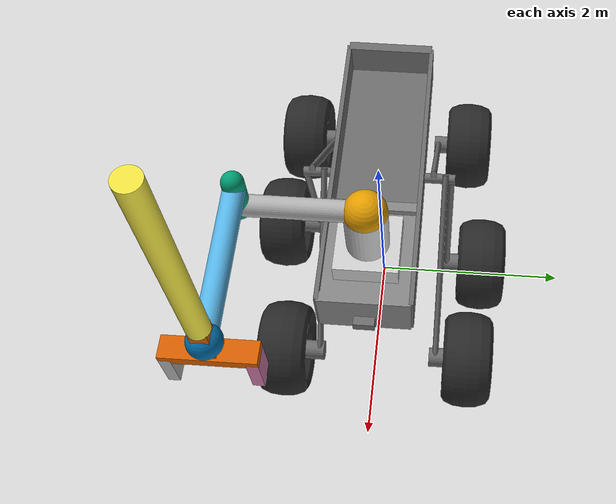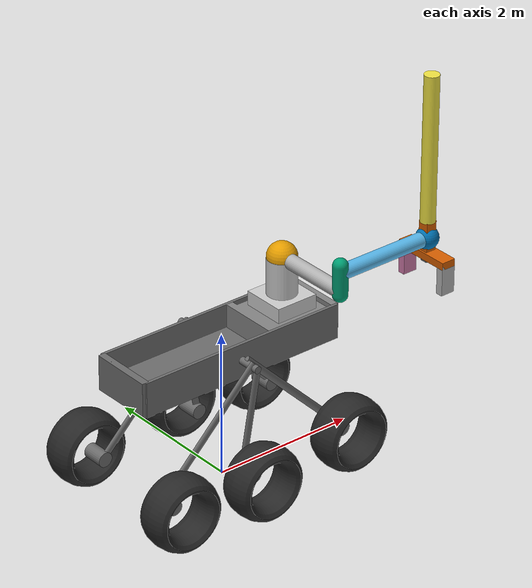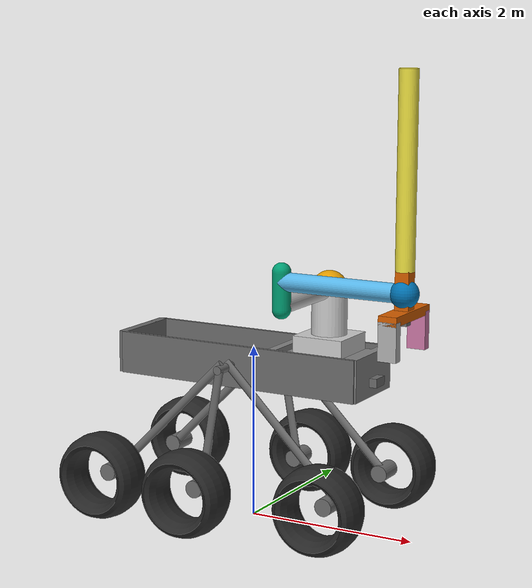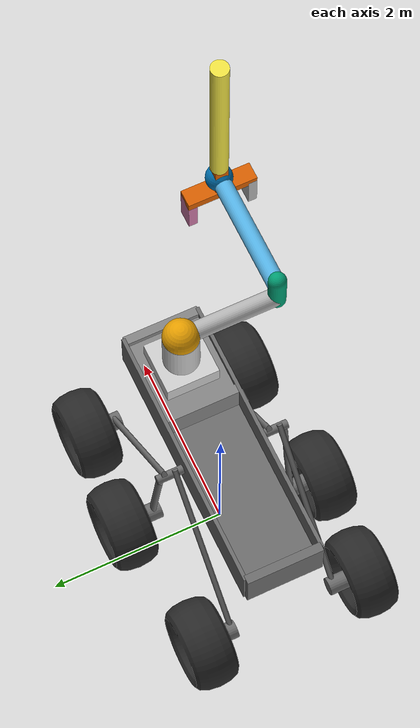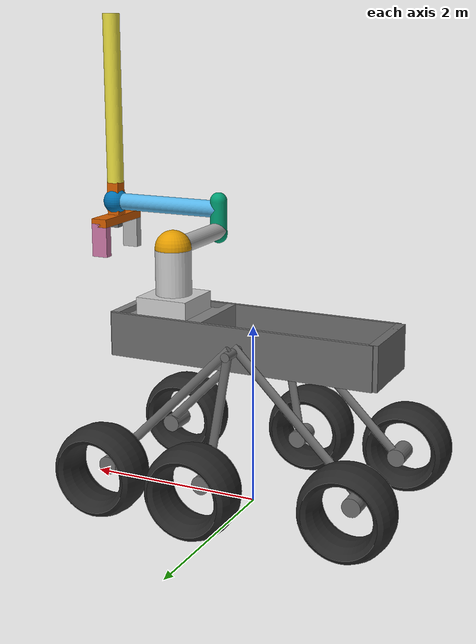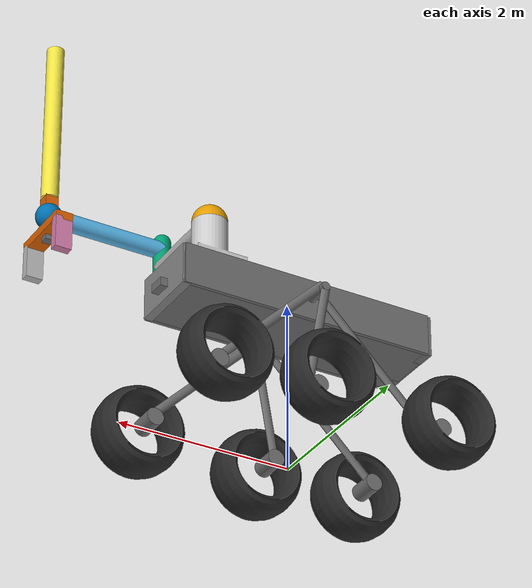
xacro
<?xml version="1.0"?>

<robot name="albor" xmlns:xacro="http://wiki.ros.org/xacro">

    <!-- includes -->
    <xacro:include filename="$(find albor_description)/urdf/base/robot_base.urdf.xacro"/>
    <xacro:include filename="$(find albor_description)/urdf/arm/gripper.urdf.xacro"/>
    <xacro:include filename="$(find albor_description)/urdf/wheels/rover_wheel.urdf.xacro"/>
    <xacro:include filename="$(find albor_description)/urdf/arm/scara.urdf.xacro"/>
    <xacro:include filename="$(find albor_description)/urdf/sensors/camera.urdf.xacro"/>
    <xacro:include filename="$(find albor_description)/urdf/sensors/imu_sensor.urdf.xacro"/>
    <xacro:include filename="$(find albor_description)/urdf/utils/utils.urdf.xacro"/>
    <xacro:include filename="$(find albor_description)/urdf/ros2_control.urdf.xacro"/>

    <xacro:arg name="prefix" default=""/>

    <xacro:utils/>

    <xacro:wheel    prefix="$(arg prefix)"
                    left_back_link="$(arg prefix)left_back_link"
                    left_front_link="$(arg prefix)left_front_link"
                    left_mid_link="$(arg prefix)left_mid_link"
                    right_back_link="$(arg prefix)right_back_link"
                    right_front_link="$(arg prefix)right_front_link"
                    right_mid_link="$(arg prefix)right_mid_link">
    </xacro:wheel>

    <xacro:scara    prefix="$(arg prefix)"
                    compartment_link="$(arg prefix)compartment_link"
                    init_pose="2.23">
    </xacro:scara>

    <xacro:gripper  prefix="$(arg prefix)"
                    third_bone_link="$(arg prefix)third_bone_link">
    </xacro:gripper>

    <xacro:robot_base prefix="$(arg prefix)"/>

    <!--Front camera-->
    <xacro:camera   prefix="$(arg prefix)"
                    name="front"
                    parent="$(arg prefix)base_link"
                    coord="1.55 0.0 0.0"
                    size="0.1 0.2 0.1"
                    rpy="0.0 0.0 0.0">
    </xacro:camera>

    <!--Camera gripper-->
    <xacro:camera   prefix="$(arg prefix)"
                    name="gripper"
                    parent="$(arg prefix)base_gripper_link"
                    coord="0.0 0.0 0.1"
                    size="0.2 0.1 0.1"
                    rpy="1.57 -1.57 0.0">
    </xacro:camera>

    <xacro:imu_sensor prefix="$(arg prefix)" parent="$(arg prefix)base_link"/>

    <!--Gazebo plugings-->
    <xacro:include filename="$(find albor_description)/urdf/ros2_control.urdf.xacro"/>
    <xacro:arg name="config_controllers" default="$(find albor_description)/config/albor_controllers.yaml"/>
    <xacro:arg name="update_rate" default="20"/>
    <xacro:ros2_control/>

</robot>

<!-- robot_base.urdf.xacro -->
<robot xmlns:xacro="http://www.ros.org/wiki/xacro">

    <xacro:macro name="robot_base" params="prefix">

        <link name="${prefix}base_link">
            <visual name="base">
                <origin rpy="0.00000 0.00000 0.00000" xyz="0.00000 0.00000 0.00000"/>
                <geometry>
                    <box size="0.01 0.01 0.01"/>
                </geometry>
            </visual>
        </link>

        <link name="${prefix}base_footprint">
            <visual name="base_footprint">
                <origin rpy="0.00000 0.00000 0.00000" xyz="0.00000 0.00000 0.00000"/>
                <geometry>
                    <box size="0.01 0.01 0.01"/>
                </geometry>
            </visual>
        </link>

        <link name="${prefix}compartment_link">
            <collision name="Compartment_collision">
                <origin rpy="0.00000 0.00000 0.00000" xyz="0.00000 0.00000 -0.00935"/>
                <geometry>
                    <mesh filename="package://albor_description/meshes/dae/Cube.009.dae" scale="0.43290 0.50000 0.01613"/>
                </geometry>
            </collision>
            <inertial>
                <inertia ixx="14.85240" ixy="0.00000" ixz="-0.00000" iyy="5.62035" iyz="1.28487" izz="18.14634"/>
                <origin rpy="0.00000 0.00000 0.00000" xyz="-0.00000 0.07143 -0.01152"/>
                <mass value="100.00000"/>
            </inertial>
            <visual name="Compartment">
                <origin rpy="0.00000 0.00000 0.00000" xyz="0.00000 0.00000 0.00000"/>
                <material name="Material.001"/>
                <geometry>
                    <mesh filename="package://albor_description/meshes/dae/Cube.009.dae" scale="0.43290 0.50000 0.01613"/>
                </geometry>
            </visual>
        </link>

        <link name="${prefix}cube_link">
            <collision name="Cube.001_collision">
                <origin rpy="0.00000 0.00000 0.00000" xyz="-0.43290 -0.00774 0.06554"/>
                <geometry>
                    <mesh filename="package://albor_description/meshes/dae/Cube.017.dae" scale="0.43290 0.30000 0.01613"/>
                </geometry>
            </collision>
            <collision name="Cube.002_collision">
                <origin rpy="0.00000 0.00000 0.00000" xyz="0.43290 -0.00774 0.06554"/>
                <geometry>
                    <mesh filename="package://albor_description/meshes/dae/Cube.018.dae" scale="0.43290 0.50000 0.01613"/>
                </geometry>
            </collision>
            <collision name="Cube.003_collision">
                <origin rpy="0.00000 0.00000 0.00000" xyz="0.00000 -1.50774 0.06554"/>
                <geometry>
                    <mesh filename="package://albor_description/meshes/dae/Cube.019.dae" scale="0.43290 0.50000 0.01613"/>
                </geometry>
            </collision>
            <collision name="Cube_collision">
                <origin rpy="0.00000 0.00000 0.00000" xyz="0.00000 -0.01774 -0.09446"/>
                <geometry>
                    <mesh filename="package://albor_description/meshes/dae/Cube.013.dae" scale="0.43290 0.50000 0.01613"/>
                </geometry>
            </collision>
            <inertial>
                <inertia ixx="369.24508" ixy="0.00000" ixz="0.00000" iyy="18.02609" iyz="0.00000" izz="386.00741"/>
                <origin rpy="0.00000 0.00000 0.00000" xyz="0.00000 -0.01267 -0.08703"/>
                <mass value="300.00000"/>
            </inertial>
            <visual name="Cube">
                <origin rpy="0.00000 0.00000 0.00000" xyz="0.00000 -0.01267 -0.08703"/>
                <material name="Material"/>
                <geometry>
                    <mesh filename="package://albor_description/meshes/dae/Cube.013.dae" scale="0.43290 0.50000 0.01613"/>
                </geometry>
            </visual>
            <visual name="Cube.001">
                <origin rpy="0.00000 0.00000 0.00000" xyz="-0.43290 -0.00755 0.07426"/>
                <material name="Material"/>
                <geometry>
                    <mesh filename="package://albor_description/meshes/dae/Cube.017.dae" scale="0.43290 0.50000 0.01613"/>
                </geometry>
            </visual>
            <visual name="Cube.002">
                <origin rpy="0.00000 0.00000 0.00000" xyz="0.43290 -0.00755 0.07426"/>
                <material name="Material"/>
                <geometry>
                    <mesh filename="package://albor_description/meshes/dae/Cube.018.dae" scale="0.43290 0.50000 0.01613"/>
                </geometry>
            </visual>
            <visual name="Cube.003">
                <origin rpy="0.00000 0.00000 0.00000" xyz="0.00000 -1.50755 0.07495"/>
                <material name="Material"/>
                <geometry>
                    <mesh filename="package://albor_description/meshes/dae/Cube.019.dae" scale="0.43290 0.50000 0.01613"/>
                </geometry>
            </visual>
        </link>

        <!-- left part-->
        <link name="${prefix}left_axis_link">
            <collision name="left_axis_collision">
                <origin rpy="0.00000 0.00000 0.00000" xyz="0.00000 0.00000 -0.00000"/>
                <geometry>
                    <mesh filename="package://albor_description/meshes/dae/Cube.005.dae" scale="0.43290 0.50000 0.01613"/>
                </geometry>
            </collision>
            <inertial>
                <inertia ixx="0.01242" ixy="0.00000" ixz="0.00000" iyy="0.08273" iyz="-0.00000" izz="0.08273"/>
                <origin rpy="0.00000 0.00000 0.00000" xyz="0.00000 0.00000 -0.00000"/>
                <mass value="10.00000"/>
            </inertial>
            <visual name="left_axis">
                <origin rpy="0.00000 0.00000 0.00000" xyz="0.00000 0.00000 -0.00000"/>
                <material name="Material.002"/>
                <geometry>
                    <mesh filename="package://albor_description/meshes/dae/Cube.005.dae" scale="0.43290 0.50000 0.01613"/>
                </geometry>
            </visual>
        </link>

            <link name="${prefix}left_back_axis_link">
                <collision name="left_back_axis_collision">
                    <origin rpy="0.00000 0.00000 0.00000" xyz="-0.00545 0.00000 0.00000"/>
                    <geometry>
                        <mesh filename="package://albor_description/meshes/dae/Cube.008.dae" scale="0.43290 0.50000 0.01613"/>
                    </geometry>
                </collision>
                <inertial>
                    <inertia ixx="10.40604" ixy="0.00000" ixz="-0.00000" iyy="5.00821" iyz="5.19698" izz="5.40653"/>
                    <origin rpy="0.00000 0.00000 0.00000" xyz="0.00000 0.00000 0.00000"/>
                    <mass value="20.00000"/>
                </inertial>
                <visual name="left_back_axis">
                    <origin rpy="0.00000 0.00000 0.00000" xyz="0.00000 0.00000 0.00000"/>
                    <material name="Material.004"/>
                    <geometry>
                        <mesh filename="package://albor_description/meshes/dae/Cube.008.dae" scale="0.43290 0.50000 0.01613"/>
                    </geometry>
                </visual>
            </link>
                <link name="${prefix}left_back_link">
                    <collision name="left_back_collision">
                        <origin rpy="0.00000 0.00000 0.00000" xyz="-0.00000 0.00000 0.00000"/>
                        <geometry>
                            <mesh filename="package://albor_description/meshes/dae/Cylinder.004.dae" scale="0.10000 0.10000 0.15000"/>
                        </geometry>
                    </collision>
                    <inertial>
                        <inertia ixx="0.05000" ixy="0.00000" ixz="0.00000" iyy="0.10000" iyz="0.00000" izz="0.10000"/>
                        <origin rpy="0.00000 0.00000 0.00000" xyz="-0.00000 0.00000 0.00000"/>
                        <mass value="10.00000"/>
                    </inertial>
                    <visual name="left_back">
                        <origin rpy="0.00000 0.00000 0.00000" xyz="-0.00000 0.00000 0.00000"/>
                        <material name="Material.003"/>
                        <geometry>
                            <cylinder radius="0.10000" length="0.30000"/>
                        </geometry>
                    </visual>
                </link>

            <link name="${prefix}left_front_axis_link">
                <collision name="left_front_axis_collision">
                    <origin rpy="0.00000 0.00000 0.00000" xyz="-0.00007 0.00000 0.00000"/>
                    <geometry>
                        <mesh filename="package://albor_description/meshes/dae/Cube.007.dae" scale="0.43290 0.50000 0.01613"/>
                    </geometry>
                </collision>
                <inertial>
                    <inertia ixx="10.40604" ixy="-0.00000" ixz="-0.00000" iyy="5.00821" iyz="-5.19698" izz="5.40653"/>
                    <origin rpy="0.00000 0.00000 0.00000" xyz="-0.00000 0.00000 0.00000"/>
                    <mass value="20.00000"/>
                </inertial>
                <visual name="left_front_axis">
                    <origin rpy="0.00000 0.00000 0.00000" xyz="0.00000 0.00000 0.00000"/>
                    <material name="Material.006"/>
                    <geometry>
                        <mesh filename="package://albor_description/meshes/dae/Cube.007.dae" scale="0.43290 0.50000 0.01613"/>
                    </geometry>
                </visual>
            </link>
                <link name="${prefix}left_front_link">
                    <collision name="left_front_collision">
                        <origin rpy="0.00000 0.00000 0.00000" xyz="0.00000 0.00000 0.00000"/>
                        <geometry>
                            <mesh filename="package://albor_description/meshes/dae/Cylinder.001.dae" scale="0.10000 0.10000 0.15000"/>
                        </geometry>
                    </collision>
                    <inertial>
                        <inertia ixx="0.05000" ixy="0.00000" ixz="0.00000" iyy="0.10000" iyz="0.00000" izz="0.10000"/>
                        <origin rpy="0.00000 0.00000 0.00000" xyz="-0.00000 0.00000 0.00000"/>
                        <mass value="10.00000"/>
                    </inertial>
                    <visual name="left_front">
                        <origin rpy="0.00000 0.00000 0.00000" xyz="0.00000 0.00000 0.00000"/>
                        <material name="Material.005"/>
                        <geometry>
                            <cylinder radius="0.10000" length="0.30000"/>
                        </geometry>
                    </visual>
                </link>

            <link name="${prefix}left_mid_axis_link">
                <collision name="left_mid_axis_collision">
                    <origin rpy="0.00000 0.00000 0.00000" xyz="-0.00727 0.00000 0.00000"/>
                    <geometry>
                        <mesh filename="package://albor_description/meshes/dae/Cube.006.dae" scale="0.43290 0.50000 0.01613"/>
                    </geometry>
                </collision>
                <inertial>
                    <inertia ixx="2.82909" ixy="-0.00000" ixz="-0.00000" iyy="2.73667" iyz="-0.47955" izz="0.10154"/>
                    <origin rpy="0.00000 0.00000 0.00000" xyz="0.00000 0.00000 0.00000"/>
                    <mass value="20.00000"/>
                </inertial>
                <visual name="left_mid_axis">
                    <origin rpy="0.00000 0.00000 0.00000" xyz="0.00000 0.00000 0.00000"/>
                    <material name="Material.008"/>
                    <geometry>
                        <mesh filename="package://albor_description/meshes/dae/Cube.006.dae" scale="0.43290 0.50000 0.01613"/>
                    </geometry>
                </visual>
            </link>
                <link name="${prefix}left_mid_link">
                    <collision name="left_mid_collision">
                        <origin rpy="0.00000 0.00000 0.00000" xyz="0.00000 0.00000 0.00000"/>
                        <geometry>
                            <mesh filename="package://albor_description/meshes/dae/Cylinder.002.dae" scale="0.10000 0.10000 0.15000"/>
                        </geometry>
                    </collision>
                    <inertial>
                        <inertia ixx="0.05000" ixy="0.00000" ixz="0.00000" iyy="0.10000" iyz="0.00000" izz="0.10000"/>
                        <origin rpy="0.00000 0.00000 0.00000" xyz="-0.00000 0.00000 0.00000"/>
                        <mass value="10.00000"/>
                    </inertial>
                    <visual name="left_mid">
                        <origin rpy="0.00000 0.00000 0.00000" xyz="-0.00000 0.00000 0.00000"/>
                        <material name="Material.007"/>
                        <geometry>
                            <cylinder radius="0.10000" length="0.30000"/>
                        </geometry>
                    </visual>
                </link>

        <!-- right part -->
        <link name="${prefix}right_axis_link">
            <collision name="right_axis_collision">
                <origin rpy="0.00000 0.00000 0.00000" xyz="0.00606 0.00000 -0.00000"/>
                <geometry>
                    <mesh filename="package://albor_description/meshes/dae/Cube.001.dae" scale="0.43290 0.50000 0.01613"/>
                </geometry>
            </collision>
            <inertial>
                <inertia ixx="0.01242" ixy="-0.00000" ixz="-0.00000" iyy="0.08273" iyz="0.00000" izz="0.08273"/>
                <origin rpy="0.00000 0.00000 0.00000" xyz="0.00000 0.00000 -0.00000"/>
                <mass value="10.00000"/>
            </inertial>
            <visual name="right_axis">
                <origin rpy="0.00000 0.00000 0.00000" xyz="0.00000 0.00000 -0.00000"/>
                <material name="Material.009"/>
                <geometry>
                    <mesh filename="package://albor_description/meshes/dae/Cube.001.dae" scale="0.43290 0.50000 0.01613"/>
                </geometry>
            </visual>
        </link>
            <link name="${prefix}right_back_axis_link">
                <collision name="right_back_axis_collision">
                    <origin rpy="0.00000 0.00000 0.00000" xyz="0.00667 0.00000 0.00000"/>
                    <geometry>
                        <mesh filename="package://albor_description/meshes/dae/Cube.004.dae" scale="0.43290 0.50000 0.01613"/>
                    </geometry>
                </collision>
                <inertial>
                    <inertia ixx="10.40604" ixy="0.00000" ixz="-0.00000" iyy="5.00821" iyz="5.19698" izz="5.40653"/>
                    <origin rpy="0.00000 0.00000 0.00000" xyz="-0.00000 0.00000 0.00000"/>
                    <mass value="20.00000"/>
                </inertial>
                <visual name="right_back_axis">
                    <origin rpy="0.00000 0.00000 0.00000" xyz="0.00000 0.00000 0.00000"/>
                    <material name="Material.011"/>
                    <geometry>
                        <mesh filename="package://albor_description/meshes/dae/Cube.004.dae" scale="0.43290 0.50000 0.01613"/>
                    </geometry>
                </visual>
            </link>
                <link name="${prefix}right_back_link">
                    <collision name="right_back_collision">
                        <origin rpy="0.00000 0.00000 0.00000" xyz="0.00000 0.00000 0.00000"/>
                        <geometry>
                            <mesh filename="package://albor_description/meshes/dae/Cylinder.005.dae" scale="0.10000 0.10000 0.15000"/>
                        </geometry>
                    </collision>
                    <inertial>
                        <inertia ixx="0.05000" ixy="0.00000" ixz="0.00000" iyy="0.10000" iyz="0.00000" izz="0.10000"/>
                        <origin rpy="0.00000 0.00000 0.00000" xyz="0.00000 0.00000 0.00000"/>
                        <mass value="10.00000"/>
                    </inertial>
                        <visual name="right_back">
                        <origin rpy="0.00000 0.00000 0.00000" xyz="0.00000 0.00000 -0.00000"/>
                        <material name="Material.010"/>
                        <geometry>
                            <cylinder radius="0.10000" length="0.30000"/>
                        </geometry>
                    </visual>
                </link>

            <link name="${prefix}right_front_axis_link">
                <collision name="right_front_axis_collision">
                    <origin rpy="0.00000 0.00000 0.00000" xyz="0.00545 0.00000 0.00000"/>
                    <geometry>
                        <mesh filename="package://albor_description/meshes/dae/Cube.002.dae" scale="0.43290 0.50000 0.01613"/>
                    </geometry>
                </collision>
                <inertial>
                    <inertia ixx="10.40604" ixy="0.00000" ixz="0.00000" iyy="5.00821" iyz="-5.19698" izz="5.40653"/>
                    <origin rpy="0.00000 0.00000 0.00000" xyz="-0.00000 -0.00000 0.00000"/>
                    <mass value="20.00000"/>
                </inertial>
                <visual name="right_front_axis">
                    <origin rpy="0.00000 0.00000 0.00000" xyz="0.00000 -0.00000 0.00000"/>
                    <material name="Material.013"/>
                    <geometry>
                        <mesh filename="package://albor_description/meshes/dae/Cube.002.dae" scale="0.43290 0.50000 0.01613"/>
                    </geometry>
                </visual>
            </link>
                <link name="${prefix}right_front_link">
                    <collision name="right_front_collision">
                        <origin rpy="0.00000 0.00000 0.00000" xyz="0.00000 0.00000 0.00000"/>
                        <geometry>
                            <mesh filename="package://albor_description/meshes/dae/Cylinder.dae" scale="0.10000 0.10000 0.15000"/>
                        </geometry>
                        </collision>
                    <inertial>
                        <inertia ixx="0.05000" ixy="0.00000" ixz="0.00000" iyy="0.10000" iyz="0.00000" izz="0.10000"/>
                        <origin rpy="0.00000 0.00000 0.00000" xyz="-0.00000 0.00000 0.00000"/>
                        <mass value="10.00000"/>
                    </inertial>
                    <visual name="right_front">
                        <origin rpy="0.00000 0.00000 0.00000" xyz="-0.00000 0.00000 0.00000"/>
                        <material name="Material.012"/>
                        <geometry>
                            <cylinder radius="0.10000" length="0.30000"/>
                        </geometry>
                    </visual>
                </link>

            <link name="${prefix}right_mid_axis_link">
                <collision name="right_mid_axis_collision">
                    <origin rpy="0.00000 0.00000 0.00000" xyz="0.00727 0.00000 0.00000"/>
                    <geometry>
                        <mesh filename="package://albor_description/meshes/dae/Cube.003.dae" scale="0.43290 0.50000 0.01613"/>
                    </geometry>
                </collision>
                <inertial>
                    <inertia ixx="2.82909" ixy="0.00000" ixz="-0.00000" iyy="2.73667" iyz="0.47955" izz="0.10154"/>
                    <origin rpy="0.00000 0.00000 0.00000" xyz="0.00000 0.00000 0.00000"/>
                    <mass value="20.00000"/>
                </inertial>
                <visual name="right_mid_axis">
                    <origin rpy="0.00000 0.00000 0.00000" xyz="0.00000 0.00000 0.00000"/>
                    <material name="Material.015"/>
                    <geometry>
                        <mesh filename="package://albor_description/meshes/dae/Cube.003.dae" scale="0.43290 0.50000 0.01613"/>
                    </geometry>
                </visual>
            </link>
                <link name="${prefix}right_mid_link">
                    <collision name="right_mid_collision">
                        <origin rpy="0.00000 0.00000 0.00000" xyz="0.00000 0.00000 0.00000"/>
                        <geometry>
                            <mesh filename="package://albor_description/meshes/dae/Cylinder.003.dae" scale="0.10000 0.10000 0.15000"/>
                        </geometry>
                    </collision>
                        <inertial>
                        <inertia ixx="0.05000" ixy="0.00000" ixz="0.00000" iyy="0.10000" iyz="0.00000" izz="0.10000"/>
                        <origin rpy="0.00000 0.00000 0.00000" xyz="-0.00000 0.00000 0.00000"/>
                        <mass value="10.00000"/>
                    </inertial>
                        <visual name="right_mid">
                        <origin rpy="0.00000 0.00000 0.00000" xyz="0.00000 0.00000 0.00000"/>
                        <material name="Material.014"/>
                        <geometry>
                            <cylinder radius="0.10000" length="0.30000"/>
                        </geometry>
                    </visual>
                </link>

        <joint name="${prefix}base_footprint_joint" type="fixed">
            <origin rpy="0.00000 0.00000 0.00000" xyz="0.00000 0.0000 1.7800"/>
            <parent link="${prefix}base_footprint"/>
            <child link="${prefix}base_link"/>
        </joint>

        <joint name="${prefix}base_link_joint" type="fixed">
            <origin rpy="0.00000 0.00000 -1.57000" xyz="0.00000 0.0000 0.0000"/>
            <parent link="${prefix}base_link"/>
            <child link="${prefix}cube_link"/>
        </joint>

        <joint name="${prefix}compartment_joint" type="fixed">
            <origin rpy="0.00000 0.00000 0.00000" xyz="0.00000 0.96226 0.15490"/>
            <parent link="${prefix}cube_link"/>
            <child link="${prefix}compartment_link"/>
        </joint>

        <joint name="${prefix}left_axis_joint" type="fixed">
            <origin rpy="0.00000 0.00000 0.00000" xyz="0.60606 -0.03774 0.08554"/>
            <parent link="${prefix}cube_link"/>
            <child link="${prefix}left_axis_link"/>
        </joint>

        <joint name="${prefix}left_back_axis_joint" type="fixed">
            <origin rpy="0.00000 0.00000 0.00000" xyz="-0.06061 0.70000 -0.65000"/>
            <parent link="${prefix}left_axis_link"/>
            <child link="${prefix}left_back_axis_link"/>
        </joint>

        <joint name="${prefix}left_back_joint" type="fixed">
            <origin rpy="0.00000 1.57080 0.00000" xyz="0.10455 0.65000 -0.70000"/>
            <parent link="${prefix}left_back_axis_link"/>
            <child link="${prefix}left_back_link"/>
        </joint>

        <joint name="${prefix}left_front_axis_joint" type="fixed">
            <origin rpy="0.00000 0.00000 0.00000" xyz="0.06061 -0.70000 -0.65000"/>
            <parent link="${prefix}left_axis_link"/>
            <child link="${prefix}left_front_axis_link"/>
        </joint>

        <joint name="${prefix}left_front_joint" type="fixed">
            <origin rpy="0.00000 1.57080 0.00000" xyz="0.08333 -0.70000 -0.70000"/>
            <parent link="${prefix}left_front_axis_link"/>
            <child link="${prefix}left_front_link"/>
        </joint>

        <joint name="${prefix}left_mid_axis_joint" type="fixed">
            <origin rpy="0.00000 0.00000 0.00000" xyz="0.12121 -0.10000 -0.65000"/>
            <parent link="${prefix}left_axis_link"/>
            <child link="${prefix}left_mid_axis_link"/>
        </joint>

        <joint name="${prefix}left_mid_joint" type="fixed">
            <origin rpy="0.00000 1.57080 0.00000" xyz="0.07273 -0.10000 -0.70000"/>
            <parent link="${prefix}left_mid_axis_link"/>
            <child link="${prefix}left_mid_link"/>
        </joint>

        <joint name="${prefix}right_axis_joint" type="fixed">
            <origin rpy="0.00000 0.00000 0.00000" xyz="-0.60606 -0.03774 0.08554"/>
            <parent link="${prefix}cube_link"/>
            <child link="${prefix}right_axis_link"/>
        </joint>

        <joint name="${prefix}right_back_axis_joint" type="fixed">
            <origin rpy="0.00000 0.00000 0.00000" xyz="-0.06061 0.70000 -0.65000"/>
            <parent link="${prefix}right_axis_link"/>
            <child link="${prefix}right_back_axis_link"/>
        </joint>

        <joint name="${prefix}right_back_joint" type="fixed">
            <origin rpy="0.00000 1.57080 0.00000" xyz="-0.08333 0.65000 -0.70000"/>
            <parent link="${prefix}right_back_axis_link"/>
            <child link="${prefix}right_back_link"/>
        </joint>

        <joint name="${prefix}right_front_axis_joint" type="fixed">
            <origin rpy="0.00000 0.00000 0.00000" xyz="0.06061 -0.70000 -0.65000"/>
            <parent link="${prefix}right_axis_link"/>
            <child link="${prefix}right_front_axis_link"/>
        </joint>

        <joint name="${prefix}right_front_joint" type="fixed">
            <origin rpy="0.00000 1.57080 0.00000" xyz="-0.10455 -0.70000 -0.70000"/>
            <parent link="${prefix}right_front_axis_link"/>
            <child link="${prefix}right_front_link"/>
        </joint>

        <joint name="${prefix}right_mid_axis_joint" type="fixed">
            <origin rpy="0.00000 0.00000 0.00000" xyz="-0.12121 0.10000 -0.65000"/>
            <parent link="${prefix}right_axis_link"/>
            <child link="${prefix}right_mid_axis_link"/>
        </joint>

        <joint name="${prefix}right_mid_joint" type="fixed">
            <origin rpy="0.00000 1.57080 0.00000" xyz="-0.07273 0.10000 -0.70000"/>
            <parent link="${prefix}right_mid_axis_link"/>
            <child link="${prefix}right_mid_link"/>
        </joint>
    </xacro:macro>
</robot>

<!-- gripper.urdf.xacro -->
<robot xmlns:xacro="http://www.ros.org/wiki/xacro">

    <xacro:macro name="gripper" params="third_bone_link prefix">

        <link name="${prefix}base_gripper_link">
            <collision name="base_gripper_collision">
                <origin rpy="-0.00000 0.00000 0.00000" xyz="0.00000 -0.00000 -0.00000"/>
                <geometry>
                    <mesh filename="package://albor_description/meshes/dae/Cube.012.dae" scale="0.07500 0.07500 0.20000"/>
                </geometry>
            </collision>
            <inertial>
                <inertia ixx="0.05792" ixy="-0.00000" ixz="0.00000" iyy="0.15247" iyz="0.00000" izz="0.11022"/>
                <origin rpy="0.00000 0.00000 0.00000" xyz="0.00000 0.00000 -0.00000"/>
                <mass value="1.00000"/>
            </inertial>
                <visual name="base_gripper">
                <origin rpy="0.00000 0.00000 0.00000" xyz="0.00000 0.00000 0.00000"/>
                <geometry>
                    <mesh filename="package://albor_description/meshes/dae/Cube.012.dae" scale="0.07500 0.07500 0.20000"/>
                </geometry>
            </visual>
        </link>

        <link name="${prefix}gripper_1_link">
            <collision name="gripper_1_collision">
                <origin rpy="0.00000 0.00000 0.00000" xyz="0.00000 0.00000 0.00000"/>
                <geometry>
                    <mesh filename="package://albor_description/meshes/dae/Cube.011.dae" scale="0.05000 0.10000 0.20000"/>
                </geometry>
            </collision>
            <inertial>
                <inertia ixx="0.01667" ixy="0.00000" ixz="0.00000" iyy="0.01417" iyz="0.00000" izz="0.00417"/>
                <origin rpy="0.00000 0.00000 0.00000" xyz="0.00000 0.00000 0.00000"/>
                <mass value="0.50000"/>
            </inertial>
            <visual name="gripper_1">
                <origin rpy="0.00000 0.00000 0.00000" xyz="0.00000 0.00000 0.00000"/>
                <geometry>
                    <mesh filename="package://albor_description/meshes/dae/Cube.011.dae" scale="0.05000 0.10000 0.20000"/>
                </geometry>
            </visual>
        </link>

        <link name="${prefix}gripper_2_link">
            <collision name="gripper_2_collision">
                <origin rpy="0.00000 0.00000 0.00000" xyz="-0.00000 0.00000 0.00000"/>
                <geometry>
                    <mesh filename="package://albor_description/meshes/dae/Cube.010.dae" scale="0.05000 0.10000 0.20000"/>
                </geometry>
            </collision>
            <inertial>
                <inertia ixx="0.01667" ixy="0.00000" ixz="0.00000" iyy="0.01417" iyz="0.00000" izz="0.00417"/>
                <origin rpy="0.00000 0.00000 0.00000" xyz="-0.00000 0.00000 0.00000"/>
                <mass value="0.50000"/>
            </inertial>
            <visual name="gripper_2">
                <origin rpy="0.00000 0.00000 0.00000" xyz="-0.00000 0.00000 0.00000"/>
                <geometry>
                    <mesh filename="package://albor_description/meshes/dae/Cube.010.dae" scale="0.05000 0.10000 0.20000"/>
                </geometry>
            </visual>
        </link>

        <joint name="${prefix}gripper_1_joint" type="prismatic">
            <limit lower="0.00000" upper="0.07000" effort="5000.00000" velocity="10.00000"/>
            <origin rpy="3.14159 0.00000 0.00000" xyz="-0.35000 0.00000 0.30000"/>
            <parent link="${prefix}base_gripper_link"/>
            <child link="${prefix}gripper_1_link"/>
            <axis xyz="1.00000 0.00000 0.00000"/>
        </joint>

        <joint name="${prefix}gripper_2_joint" type="prismatic">
            <limit lower="-0.07000" upper="0.00000" effort="5000.00000" velocity="10.00000"/>
            <origin rpy="3.14159 0.00000 0.00000" xyz="0.35000 0.00000 0.30000"/>
            <parent link="${prefix}base_gripper_link"/>
            <child link="${prefix}gripper_2_link"/>
            <axis xyz="1.00000 0.00000 0.00000"/>
        </joint>

        <joint name="${prefix}base_gripper_joint" type="revolute">
            <limit lower="-3.14000" upper="3.14000" effort="100.00000" velocity="10.00000"/>
            <origin rpy="-3.14159 0.00000 0.00000" xyz="0.00000 0.00000 -2.35000"/>
            <parent link= "${third_bone_link}"/>
            <child link="${prefix}base_gripper_link"/>
            <axis xyz="0.00000 0.00000 1.00000"/>
        </joint>

    </xacro:macro>
</robot>

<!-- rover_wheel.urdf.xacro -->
<robot xmlns:xacro="http://www.ros.org/wiki/xacro">

    <xacro:macro name="wheel" params="prefix left_back_link left_front_link left_mid_link right_back_link right_front_link right_mid_link">

        <link name="${prefix}left_back_wheel_link">
            <collision name="left_back_wheel_collision">
                <origin rpy="0.00000 0.00000 0.00000" xyz="-0.00000 0.00000 0.00000"/>
                <geometry>
                    <mesh filename="package://albor_description/meshes/dae/Torus.010.dae" scale="0.40000 0.40000 1.00000"/>
                </geometry>
                <surface>
                    <friction>
                        <ode>
                            <mu>5.000000</mu>
                            <mu2>5.00000</mu2>
                            <fdir1>0.00000 0.000000 1.000000</fdir1>
                            <slip1>0.500000</slip1>
                            <slip2>0.500000</slip2>
                        </ode>
                    </friction>
                </surface>
            </collision>
            <inertial>
                <inertia ixx="1.17295" ixy="0.00000" ixz="-0.00000" iyy="0.70953" iyz="-0.00000" izz="0.70953"/>
                <origin rpy="0.00000 0.00000 0.00000" xyz="-0.00000 0.00000 0.00000"/>
                <mass value="10.00000"/>
            </inertial>
            <visual name="left_back_wheel">
                <origin rpy="0.00000 0.00000 0.00000" xyz="-0.00000 0.00000 0.00000"/>
                <material name="Material.016"/>
                <geometry>
                    <mesh filename="package://albor_description/meshes/dae/Torus.010.dae" scale="0.40000 0.40000 1.00000"/>
                </geometry>
            </visual>
        </link>

        <link name="${prefix}left_front_wheel_link">
            <collision name="left_front_wheel_collision">
                <origin rpy="0.00000 0.00000 0.00000" xyz="0.00000 0.00000 0.00000"/>
                <geometry>
                <mesh filename="package://albor_description/meshes/dae/Torus.004.dae" scale="0.40000 0.40000 1.00000"/>
                </geometry>
                <surface>
                    <friction>
                        <ode>
                            <mu>5.000000</mu>
                            <mu2>5.00000</mu2>
                            <fdir1>0.00000 0.000000 1.000000</fdir1>
                            <slip1>0.500000</slip1>
                            <slip2>0.500000</slip2>
                        </ode>
                    </friction>
                </surface>
            </collision>
            <inertial>
                <inertia ixx="1.17295" ixy="0.00000" ixz="-0.00000" iyy="0.70953" iyz="-0.00000" izz="0.70953"/>
                <origin rpy="0.00000 0.00000 0.00000" xyz="-0.00000 -0.00000 0.00000"/>
                <mass value="10.00000"/>
            </inertial>
            <visual name="left_front_wheel">
                <origin rpy="0.00000 -0.00000 0.00000" xyz="0.00000 0.00000 0.00000"/>
                <material name="Material.017"/>
                <geometry>
                <mesh filename="package://albor_description/meshes/dae/Torus.004.dae" scale="0.40000 0.40000 1.00000"/>
                </geometry>
            </visual>
        </link>

        <link name="${prefix}left_mid_wheel_link">
            <collision name="left_mid_wheel_collision">
                <origin rpy="0.00000 0.00000 0.00000" xyz="0.00000 0.00000 0.00000"/>
                <geometry>
                <mesh filename="package://albor_description/meshes/dae/Torus.008.dae" scale="0.40000 0.40000 1.00000"/>
                </geometry>
                <surface>
                    <friction>
                        <ode>
                            <mu>5.000000</mu>
                            <mu2>5.00000</mu2>
                            <fdir1>0.00000 0.000000 1.000000</fdir1>
                            <slip1>0.500000</slip1>
                            <slip2>0.500000</slip2>
                        </ode>
                    </friction>
                </surface>
            </collision>
            <inertial>
                <inertia ixx="1.17295" ixy="0.00000" ixz="-0.00000" iyy="0.70953" iyz="-0.00000" izz="0.70953"/>
                <origin rpy="0.00000 0.00000 0.00000" xyz="0.00000 0.00000 0.00000"/>
                <mass value="10.00000"/>
            </inertial>
            <visual name="left_mid_wheel">
                <origin rpy="0.00000 -0.00000 0.00000" xyz="0.00000 0.00000 0.00000"/>
                <material name="Material.018"/>
                <geometry>
                <mesh filename="package://albor_description/meshes/dae/Torus.008.dae" scale="0.40000 0.40000 1.00000"/>
                </geometry>
            </visual>
        </link>

        <link name="${prefix}right_back_wheel_link">
            <collision name="right_back_wheel_collision">
                <origin rpy="0.00000 0.00000 0.00000" xyz="-0.00000 0.00000 -0.00000"/>
                <geometry>
                <mesh filename="package://albor_description/meshes/dae/Torus.011.dae" scale="0.40000 0.40000 1.00000"/>
                </geometry>
                <surface>
                    <friction>
                        <ode>
                            <mu>5.000000</mu>
                            <mu2>5.00000</mu2>
                            <fdir1>0.00000 0.000000 1.000000</fdir1>
                            <slip1>0.500000</slip1>
                            <slip2>0.500000</slip2>
                        </ode>
                    </friction>
                </surface>
            </collision>
            <inertial>
                <inertia ixx="1.17295" ixy="0.00000" ixz="-0.00000" iyy="0.70953" iyz="-0.00000" izz="0.70953"/>
                <origin rpy="0.00000 0.00000 0.00000" xyz="0.00000 0.00000 0.00000"/>
                <mass value="10.00000"/>
            </inertial>
            <visual name="right_back_wheel">
                <origin rpy="0.00000 0.00000 0.00000" xyz="0.00000 0.00000 0.00000"/>
                <material name="Material.019"/>
                <geometry>
                <mesh filename="package://albor_description/meshes/dae/Torus.011.dae" scale="0.40000 0.40000 1.00000"/>
                </geometry>
            </visual>
        </link>

        <link name="${prefix}right_front_wheel_link">
            <collision name="right_front_wheel_collision">
                <origin rpy="0.00000 0.00000 0.00000" xyz="-0.00000 0.00000 -0.00000"/>
                <geometry>
                <mesh filename="package://albor_description/meshes/dae/Torus.dae" scale="0.40000 0.40000 1.00000"/>
                </geometry>
                <surface>
                    <friction>
                        <ode>
                            <mu>5.000000</mu>
                            <mu2>5.00000</mu2>
                            <fdir1>0.00000 0.000000 1.000000</fdir1>
                            <slip1>0.500000</slip1>
                            <slip2>0.500000</slip2>
                        </ode>
                    </friction>
                </surface>
            </collision>
            <inertial>
                <inertia ixx="1.17295" ixy="0.00000" ixz="-0.00000" iyy="0.70953" iyz="-0.00000" izz="0.70953"/>
                <origin rpy="0.00000 0.00000 0.00000" xyz="0.00000 -0.00000 0.00000"/>
                <mass value="10.00000"/>
            </inertial>
            <visual name="right_front_wheel">
                <origin rpy="0.00000 -0.00000 0.00000" xyz="0.00000 0.00000 0.00000"/>
                <material name="Material.020"/>
                <geometry>
                <mesh filename="package://albor_description/meshes/dae/Torus.dae" scale="0.40000 0.40000 1.00000"/>
                </geometry>
            </visual>
        </link>

        <link name="${prefix}right_mid_wheel_link">
            <collision name="right_mid_wheel_collision">
                <origin rpy="0.00000 0.00000 0.00000" xyz="0.00000 0.00000 0.00000"/>
                <geometry>
                <mesh filename="package://albor_description/meshes/dae/Torus.009.dae" scale="0.40000 0.40000 1.00000"/>
                </geometry>
                <surface>
                    <friction>
                        <ode>
                            <mu>5.000000</mu>
                            <mu2>5.00000</mu2>
                            <fdir1>0.00000 0.000000 1.000000</fdir1>
                            <slip1>0.500000</slip1>
                            <slip2>0.500000</slip2>
                        </ode>
                    </friction>
                </surface>
            </collision>
            <inertial>
                <inertia ixx="1.17295" ixy="0.00000" ixz="-0.00000" iyy="0.70953" iyz="-0.00000" izz="0.70953"/>
                <origin rpy="0.00000 0.00000 0.00000" xyz="-0.00000 0.00000 0.00000"/>
                <mass value="10.00000"/>
            </inertial>
            <visual name="right_mid_wheel">
                <origin rpy="0.00000 0.00000 0.00000" xyz="-0.00000 0.00000 0.00000"/>
                <material name="Material.021"/>
                <geometry>
                <mesh filename="package://albor_description/meshes/dae/Torus.009.dae" scale="0.40000 0.40000 1.00000"/>
                </geometry>
            </visual>
        </link>

        <joint name="${prefix}left_back_wheel_joint" type="continuous">
            <limit lower="0" upper="0" effort="500.00000" velocity="10.00000"/>
            <origin rpy="0.00000 3.14000 0.00000" xyz="0.00000 0.00000 0.25000"/>
            <parent link="${left_back_link}"/>
            <child link="${prefix}left_back_wheel_link"/>
            <axis xyz="0.00000 0.00000 1.00000"/>
        </joint>

        <transmission name="${prefix}left_back_wheel_joint_trans">
            <type>transmission_interface/SimpleTransmission</type>
            <joint name="${prefix}left_back_wheel_joint">
                <hardwareInterface>hardware_interface/VelocityJointInterface</hardwareInterface>
            </joint>
            <actuator name="${prefix}left_back_wheel_joint_motor">
                <mechanicalReduction>1.0</mechanicalReduction>
            </actuator>
        </transmission>

        <joint name="${prefix}left_front_wheel_joint" type="continuous">
            <limit lower="0" upper="0" effort="500.00000" velocity="10.00000"/>
            <origin rpy="0.00000 3.14000 0.00000" xyz="0.00000 0.00000 0.25000"/>
            <parent link="${left_front_link}"/>
            <child link="${prefix}left_front_wheel_link"/>
            <axis xyz="0.00000 0.00000 1.00000"/>
        </joint>
        <transmission name="${prefix}left_front_wheel_joint_trans">
            <type>transmission_interface/SimpleTransmission</type>
            <joint name="${prefix}left_front_wheel_joint">
                <hardwareInterface>hardware_interface/VelocityJointInterface</hardwareInterface>
            </joint>
            <actuator name="${prefix}left_front_wheel_joint_motor">
                <mechanicalReduction>1.0</mechanicalReduction>
            </actuator>
        </transmission>

        <joint name="${prefix}left_mid_wheel_joint" type="continuous">
            <limit lower="0" upper="0" effort="500.00000" velocity="10.00000"/>
            <origin rpy="0.00000 3.14000 0.00000" xyz="0.00000 0.00000 0.30000"/>
            <parent link="${left_mid_link}"/>
            <child link="${prefix}left_mid_wheel_link"/>
            <axis xyz="0.00000 0.00000 1.00000"/>
        </joint>
        <transmission name="${prefix}left_mid_wheel_joint_trans">
            <type>transmission_interface/SimpleTransmission</type>
            <joint name="${prefix}left_mid_wheel_joint">
                <hardwareInterface>hardware_interface/VelocityJointInterface</hardwareInterface>
            </joint>
            <actuator name="${prefix}left_mid_wheel_joint_motor">
                <mechanicalReduction>1.0</mechanicalReduction>
            </actuator>
        </transmission>

        <joint name="${prefix}right_back_wheel_joint" type="continuous">
            <limit lower="0" upper="0" effort="500.00000" velocity="10.00000"/>
            <origin rpy="3.14000 3.14000 0.00000" xyz="0.00000 0.00000 -0.25000"/>
            <parent link="${right_back_link}"/>
            <child link="${prefix}right_back_wheel_link"/>
            <axis xyz="0.00000 0.00000 1.00000"/>
        </joint>
        <transmission name="${prefix}right_back_wheel_joint_trans">
            <type>transmission_interface/SimpleTransmission</type>
            <joint name="${prefix}right_back_wheel_joint">
                <hardwareInterface>hardware_interface/VelocityJointInterface</hardwareInterface>
            </joint>
            <actuator name="${prefix}right_back_wheel_joint_motor">
                <mechanicalReduction>1.0</mechanicalReduction>
            </actuator>
        </transmission>

        <joint name="${prefix}right_front_wheel_joint" type="continuous">
            <limit lower="0" upper="0" effort="500.00000" velocity="10.00000"/>
            <origin rpy="3.14000 3.14000 0.00000" xyz="-0.00000 0.00000 -0.25000"/>
            <parent link="${right_front_link}"/>
            <child link="${prefix}right_front_wheel_link"/>
            <axis xyz="0.00000 0.00000 1.00000"/>
        </joint>
        <transmission name="${prefix}right_front_wheel_joint_trans">
            <type>transmission_interface/SimpleTransmission</type>
            <joint name="${prefix}right_front_wheel_joint">
                <hardwareInterface>hardware_interface/VelocityJointInterface</hardwareInterface>
            </joint>
            <actuator name="${prefix}right_front_wheel_joint_motor">
                <mechanicalReduction>1.0</mechanicalReduction>
            </actuator>
        </transmission>

        <joint name="${prefix}right_mid_wheel_joint" type="continuous">
            <limit lower="0" upper="0" effort="500.00000" velocity="10.00000"/>
            <origin rpy="3.14000 3.14000 0.00000" xyz="-0.00000 0.00000 -0.30000"/>
            <parent link="${right_mid_link}"/>
            <child link="${prefix}right_mid_wheel_link"/>
            <axis xyz="0.00000 0.00000 1.00000"/>
        </joint>
        <transmission name="${prefix}right_mid_wheel_joint_trans">
            <type>transmission_interface/SimpleTransmission</type>
            <joint name="${prefix}right_mid_wheel_joint">
                <hardwareInterface>hardware_interface/VelocityJointInterface</hardwareInterface>
            </joint>
            <actuator name="${prefix}right_mid_wheel_joint_motor">
                <mechanicalReduction>1.0</mechanicalReduction>
            </actuator>
        </transmission>
    </xacro:macro>
</robot>

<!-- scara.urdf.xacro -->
<robot xmlns:xacro="http://www.ros.org/wiki/xacro">

    <xacro:macro name="scara" params="init_pose compartment_link prefix">

        <link name="${prefix}base_arm_link">
            <collision name="base_collision">
                <origin rpy="0.00000 0.00000 0.00000" xyz="0.00000 0.00000 0.00000"/>
                <geometry>
                    <mesh filename="package://albor_description/meshes/dae/Cube.dae" scale="0.30000 0.30000 0.10000"/>
                </geometry>
            </collision>
            <visual name="base">
                <origin rpy="0.00000 0.00000 0.00000" xyz="0.00000 0.00000 0.00000"/>
                <material name="Material.022"/>
                <geometry>
                    <mesh filename="package://albor_description/meshes/dae/Cube.dae" scale="0.30000 0.30000 0.10000"/>
                </geometry>
            </visual>
        </link>

        <link name="${prefix}first_bone_link">
            <collision name="first_bone_collision">
                <origin rpy="0.00000 0.00000 0.00000" xyz="0.00000 -0.00000 0.50000"/>
                <geometry>
                    <mesh filename="package://albor_description/meshes/dae/Cylinder.008.dae" scale="0.10000 0.10000 0.50000"/>
                </geometry>
            </collision>
            <inertial>
                <inertia ixx="0.02484" ixy="-0.00000" ixz="-0.00000" iyy="0.42909" iyz="0.00000" izz="0.42909"/>
                <origin rpy="0.00000 0.00000 0.00000" xyz="-0.00000 0.00000 0.50000"/>
                <mass value="5.00000"/>
            </inertial>
            <visual name="first_bone">
                <origin rpy="0.00000 0.00000 0.00000" xyz="0.00000 0.00000 0.50000"/>
                <geometry>
                    <mesh filename="package://albor_description/meshes/dae/Cylinder.008.dae" scale="0.10000 0.10000 0.50000"/>
                </geometry>
            </visual>
        </link>

        <link name="${prefix}first_support_link">
            <collision name="first_support_collision">
                <origin rpy="0.00000 0.00000 0.00000" xyz="0.00000 0.00000 0.00000"/>
                <geometry>
                    <mesh filename="package://albor_description/meshes/dae/Sphere.dae" scale="0.20000 0.20000 0.20000"/>
                </geometry>
            </collision>
            <visual name="first_support">
                <origin rpy="0.00000 0.00000 0.00000" xyz="0.00000 0.00000 0.00000"/>
                <geometry>
                    <mesh filename="package://albor_description/meshes/dae/Sphere.dae" scale="0.20000 0.20000 0.20000"/>
                </geometry>
            </visual>
        </link>

        <link name="${prefix}second_bone_link">
            <collision name="second_bone_collision">
                <origin rpy="0.00000 0.00000 0.00000" xyz="0.00000 -0.00000 -0.75000"/>
                <geometry>
                    <mesh filename="package://albor_description/meshes/dae/Cylinder.007.dae" scale="0.10000 0.10000 0.75000"/>
                </geometry>
            </collision>
            <inertial>
                <inertia ixx="1.32989" ixy="-0.00000" ixz="-0.00000" iyy="0.03478" iyz="-0.00000" izz="1.32989"/>
                <origin rpy="0.00000 0.00000 0.00000" xyz="0.00000 -0.00000 -0.75000"/>
                <mass value="7.00000"/>
            </inertial>
            <visual name="second_bone">
                <origin rpy="0.00000 0.00000 0.00000" xyz="0.00000 -0.00000 -0.75000"/>
                <geometry>
                    <mesh filename="package://albor_description/meshes/dae/Cylinder.007.dae" scale="0.10000 0.10000 0.75000"/>
                </geometry>
            </visual>
        </link>

        <link name="${prefix}second_support_link">
            <collision name="second_support_collision">
                <origin rpy="0.00000 0.00000 0.00000" xyz="0.00000 0.00000 -0.00000"/>
                <geometry>
                    <mesh filename="package://albor_description/meshes/dae/Sphere.003.dae" scale="0.10000 0.10000 0.10000"/>
                </geometry>
            </collision>
            <inertial>
                <inertia ixx="0.07613" ixy="-0.00000" ixz="0.00000" iyy="0.07613" iyz="-0.00000" izz="0.01291"/>
                <origin rpy="0.00000 0.00000 0.00000" xyz="0.00000 0.00000 -0.00000"/>
                <mass value="3.00000"/>
            </inertial>
            <visual name="second_support">
                <origin rpy="0.00000 0.00000 0.00000" xyz="0.00000 0.00000 -0.00000"/>
                <geometry>
                    <mesh filename="package://albor_description/meshes/dae/Sphere.003.dae" scale="0.10000 0.10000 0.10000"/>
                </geometry>
            </visual>
        </link>

        <link name="${prefix}third_bone_link">
            <collision name="third_bone_collision">
                <origin rpy="0.00000 0.00000 0.00000" xyz="0.00000 0.00000 -1.00000"/>
                <geometry>
                    <mesh filename="package://albor_description/meshes/dae/Cylinder.006.dae" scale="0.10000 0.10000 1.00000"/>
                </geometry>
            </collision>
            <inertial>
                <inertia ixx="2.68654" ixy="-0.00000" ixz="0.00000" iyy="2.68654" iyz="-0.00000" izz="0.03974"/>
                <origin rpy="0.00000 0.00000 0.00000" xyz="0.00000 0.00000 -1.00000"/>
                <mass value="5.00000"/>
            </inertial>
            <visual name="third_bone">
                <origin rpy="0.00000 0.00000 0.00000" xyz="0.00000 0.00000 -1.00000"/>
                <geometry>
                    <mesh filename="package://albor_description/meshes/dae/Cylinder.006.dae" scale="0.10000 0.10000 1.00000"/>
                </geometry>
            </visual>
          </link>

        <link name="${prefix}third_support_link">
            <collision name="third_support_collision">
                <origin rpy="0.00000 0.00000 0.00000" xyz="0.00000 0.00000 0.00000"/>
                <geometry>
                    <mesh filename="package://albor_description/meshes/dae/Sphere.001.dae" scale="0.15000 0.15000 0.15000"/>
                </geometry>
            </collision>
            <inertial>
                <inertia ixx="0.02674" ixy="-0.00000" ixz="0.00000" iyy="0.02674" iyz="-0.00000" izz="0.02666"/>
                <origin rpy="0.00000 0.00000 0.00000" xyz="0.00000 0.00000 0.00000"/>
                <mass value="3.00000"/>
            </inertial>
            <visual name="third_support">
                <origin rpy="0.00000 0.00000 0.00000" xyz="0.00000 0.00000 0.00000"/>
                <geometry>
                    <mesh filename="package://albor_description/meshes/dae/Sphere.001.dae" scale="0.15000 0.15000 0.15000"/>
                </geometry>
            </visual>
        </link>

        <joint name="${prefix}base_arm_joint" type="fixed">
            <origin rpy="0.00000 0.00000 0.00000" xyz="0.00000 0.00000 0.38065"/>
            <parent link="${compartment_link}"/>
            <child link="${prefix}base_arm_link"/>
        </joint>

        <joint name="${prefix}first_support_joint" type="fixed">
            <origin rpy="0.00000 0.00000 0.00000" xyz="0.00000 0.00000 0.45000"/>
            <parent link="${prefix}base_arm_link"/>
            <child link="${prefix}first_support_link"/>
        </joint>

        <joint name="${prefix}first_bone_joint" type="revolute">
            <limit lower="-3.14000" upper="1.57000" effort="500.00000" velocity="10.00000"/>
            <origin rpy="0.00000 1.57080 0.00000" xyz="0.10000 0.00000 0.00000"/>
            <parent link="${prefix}first_support_link"/>
            <child link="${prefix}first_bone_link"/>
            <axis xyz="1.00000 0.00000 0.00000"/>
        </joint>

        <joint name="${prefix}second_support_joint" type="fixed">
            <origin rpy="0.00000 -1.57080 0.00000" xyz="-0.15000 -0.00000 1.00000"/>
            <parent link="${prefix}first_bone_link"/>
            <child link="${prefix}second_support_link"/>
        </joint>

        <joint name="${prefix}second_bone_joint" type="revolute">
            <limit lower="-1.57000" upper="1.57000" effort="500.00000" velocity="10.00000"/>
            <origin rpy="1.57080 0.00000 0.00000" xyz="0.00000 0.00000 0.10000"/>
            <parent link="${prefix}second_support_link"/>
            <child link="${prefix}second_bone_link"/>
            <axis xyz="0.00000 1.00000 0.00000"/>
        </joint>

        <joint name="${prefix}third_support_joint" type="fixed">
            <origin rpy="-1.57080 0.00000 0.00000" xyz="0.00000 0.00000 -1.40000"/>
            <parent link="${prefix}second_bone_link"/>
            <child link="${prefix}third_support_link"/>
        </joint>

        <joint name="${prefix}third_bone_joint" type="prismatic">
            <limit lower="-2.10000" upper="0.00000" effort="500.00000" velocity="10.00000"/>
            <origin rpy="0.00000 0.00000 0.00000" xyz="0.00000 0.00000 ${init_pose}"/>
            <parent link="${prefix}third_support_link"/>
            <child link="${prefix}third_bone_link"/>
            <axis xyz="0.00000 0.00000 1.00000"/>
        </joint>

    </xacro:macro>
</robot>

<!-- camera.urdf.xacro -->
<robot xmlns:xacro="http://www.ros.org/wiki/xacro">

    <xacro:macro name="camera"
                params="prefix
                        name
                        parent
                        coord
                        size
                        rpy
                        horizontal_fov:=80
                        video_width:=1280
                        video_height:=720">

        <link name="${prefix}${name}_camera_link">
            <visual name="${prefix}">
                <origin rpy="0.00000 0.00000 0.00000" xyz="0.00000 0.00000 0.00000"/>
                <geometry>
                    <box size="${size}"/>
                </geometry>
                <material name="albor_gray">
                    <color rgba="0.41961 0.41961 0.41961 1.00000"/>
                </material>
            </visual>
        </link>

        <joint name="${prefix}${name}_camera_joint" type="fixed">
            <origin rpy="${rpy}" xyz="${coord}"/>
            <parent link="${parent}"/>
            <child link="${prefix}${name}_camera_link"/>
        </joint>

        <link name="${prefix}${name}_camera"/>
        <joint name="${prefix}${name}_camera_frame" type="fixed">
            <origin rpy="0 0 0" xyz="0 0 0"/>
            <parent link="${prefix}${name}_camera_link"/>
            <child link="${prefix}${name}_camera"/>
        </joint>

        <link name="${prefix}${name}_camera_optical"/>
        <joint name="${prefix}${name}_camera_optical_frame" type="fixed">
            <origin rpy="0 0 0" xyz="0 0 0"/>
            <parent link="${prefix}${name}_camera"/>
            <child link="${prefix}${name}_camera_optical"/>
        </joint>

        <gazebo reference="${prefix}${name}_camera">
            <sensor name="${prefix}${name}_sensor" type="camera">
                <visualize>true</visualize>
                <update_rate>30</update_rate>
                <topic>/${name}_camera/image</topic>
                <camera>
                    <horizontal_fov>${radians(float(horizontal_fov))}</horizontal_fov>
                    <image>
                        <width>${video_width}</width>
                        <height>${video_height}</height>
                        <format>R8G8B8</format>
                    </image>
                    <clip>
                        <near>0.10</near>
                        <far>15.0</far>
                    </clip>
                    <noise>
                        <type>gaussian</type>
                        <mean>0.0</mean>
                        <stddev>0.007</stddev>
                    </noise>
                    <optical_frame_id>${prefix}${name}_camera_frame</optical_frame_id>
                </camera>
            </sensor>
        </gazebo>
    </xacro:macro>
</robot>

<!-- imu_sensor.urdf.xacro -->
<robot xmlns:xacro="http://www.ros.org/wiki/xacro">

    <xacro:macro name="imu_sensor" params="prefix parent topic:='/imu/data' ">

        <link name="${prefix}imu_sensor_link">
            <visual name="imu_sensor">
                <origin rpy="0.00000 0.00000 0.00000" xyz="0.00000 0.00000 0.00000"/>
                <geometry>
                    <box size="0.1 0.1 0.1"/>
                </geometry>
                <material name="albor_gray">
                    <color rgba="0.41961 0.41961 0.41961 1.00000"/>
                </material>
            </visual>
        </link>

        <joint name="${prefix}imu_sensor_joint" type="fixed">
            <origin rpy="0.00000 0.00000 0.00000" xyz="0.00000 0.0000 -0.1000"/>
            <parent link="${parent}"/>
            <child link="${prefix}imu_sensor_link"/>
        </joint>

        <gazebo reference="${prefix}imu_sensor_link">
            <sensor name="${prefix}imu_sensor" type="imu">
                <always_on>1</always_on>
                <update_rate>30</update_rate>
                <topic>${topic}</topic>
            </sensor>
        </gazebo>

    </xacro:macro>
</robot>

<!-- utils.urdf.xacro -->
<robot xmlns:xacro="http://www.ros.org/wiki/xacro">

    <xacro:macro name="utils">
        <material name="Material.022">
            <color rgba="0.80000 0.80000 0.80000 1.00000"/>
        </material>
        <material name="Material">
            <color rgba="0.41961 0.41961 0.41961 1.00000"/>
        </material>
        <material name="Material.001">
            <color rgba="0.51373 0.51373 0.51373 1.00000"/>
        </material>
        <material name="Material.002">
            <color rgba="0.41961 0.41961 0.41961 1.00000"/>
        </material>
        <material name="Material.003">
            <color rgba="0.41961 0.41961 0.41961 1.00000"/>
        </material>
        <material name="Material.004">
            <color rgba="0.41961 0.41961 0.41961 1.00000"/>
        </material>
        <material name="Material.005">
            <color rgba="0.41961 0.41961 0.41961 1.00000"/>
        </material>
        <material name="Material.006">
            <color rgba="0.41961 0.41961 0.41961 1.00000"/>
        </material>
        <material name="Material.007">
            <color rgba="0.41961 0.41961 0.41961 1.00000"/>
        </material>
        <material name="Material.008">
            <color rgba="0.41961 0.41961 0.41961 1.00000"/>
        </material>
        <material name="Material.009">
            <color rgba="0.41961 0.41961 0.41961 1.00000"/>
        </material>
        <material name="Material.010">
            <color rgba="0.41961 0.41961 0.41961 1.00000"/>
        </material>
        <material name="Material.011">
            <color rgba="0.41961 0.41961 0.41961 1.00000"/>
        </material>
        <material name="Material.012">
            <color rgba="0.41961 0.41961 0.41961 1.00000"/>
        </material>
        <material name="Material.013">
            <color rgba="0.41961 0.41961 0.41961 1.00000"/>
        </material>
        <material name="Material.014">
            <color rgba="0.41961 0.41961 0.41961 1.00000"/>
        </material>
        <material name="Material.015">
            <color rgba="0.41961 0.41961 0.41961 1.00000"/>
        </material>
        <material name="Material.016">
            <color rgba="0.15686 0.15686 0.15686 1.00000"/>
        </material>
        <material name="Material.017">
            <color rgba="0.15686 0.15686 0.15686 1.00000"/>
        </material>
        <material name="Material.018">
            <color rgba="0.15686 0.15686 0.15686 1.00000"/>
        </material>
        <material name="Material.019">
            <color rgba="0.15686 0.15686 0.15686 1.00000"/>
        </material>
        <material name="Material.020">
            <color rgba="0.15686 0.15686 0.15686 1.00000"/>
        </material>
        <material name="Material.021">
            <color rgba="0.15686 0.15686 0.15686 1.00000"/>
        </material>
    </xacro:macro>
</robot>
